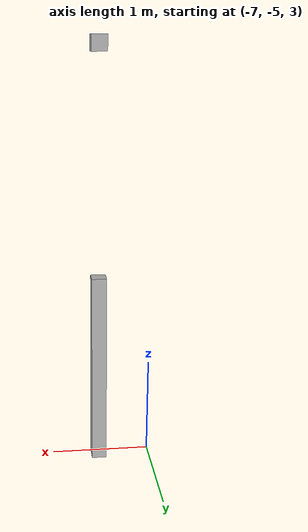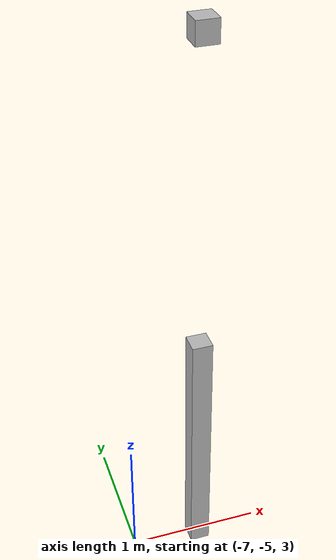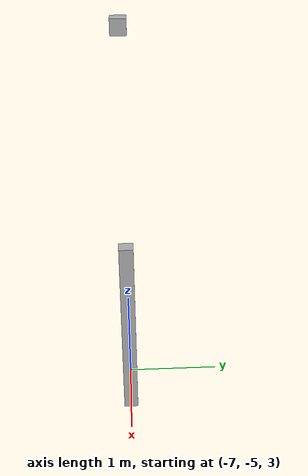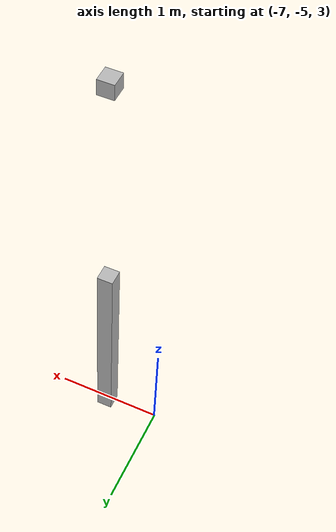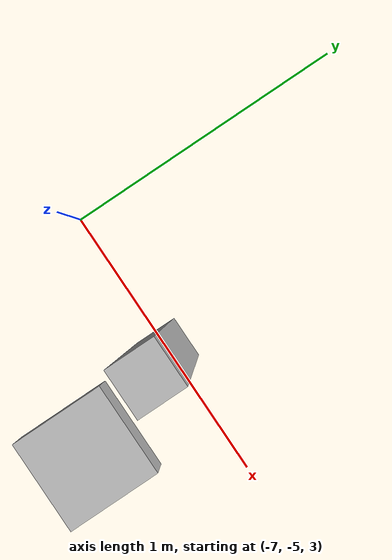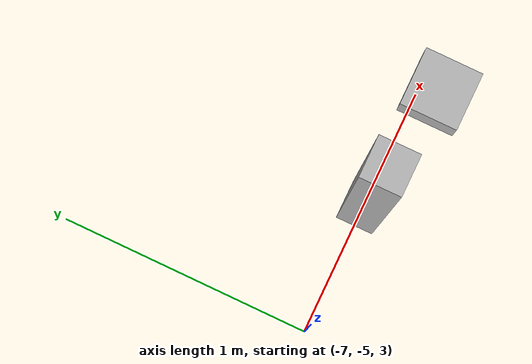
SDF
<sdf version="1.7">
 <world name="default">
  <model name="orthogonal_747_2.000.15_TS">
   <static>1</static>
   <link name="z_link_3_0_0">
    <inertial>
     <mass>1</mass>
     <inertia>
      <ixx>0.166667</ixx>
      <ixy>0</ixy>
      <ixz>0</ixz>
      <iyy>0.166667</iyy>
      <iyz>0</iyz>
      <izz>0.166667</izz>
     </inertia>
    </inertial>
    <pose>0 0 6.45 0 -0 0</pose>
    <visual name="visual_0">
     <laser_retro>2577</laser_retro>
     <geometry><box><size>0.15 1e-06 2</size></box></geometry>
     <material>
      <script><name>Gazebo/Grey</name><uri>file://media/materials/scripts/gazebo.material</uri></script>
      <shader type="pixel"><normal_map>__default__</normal_map></shader>
      <ambient>0.678 0.498 0.659 1</ambient>
      <diffuse>0.7 0.7 0.7 1</diffuse>
      <specular>0.01 0.01 0.01 1</specular>
      <emissive>0 0 0 1</emissive>
     </material>
     <pose>0 -0.075 0 0 -0 0</pose>
     <transparency>1</transparency>
    </visual>
    <visual name="visual_1">
     <laser_retro>2578</laser_retro>
     <geometry><box><size>0.15 1e-06 2</size></box></geometry>
     <material>
      <script><name>Gazebo/Grey</name><uri>file://media/materials/scripts/gazebo.material</uri></script>
      <shader type="pixel"><normal_map>__default__</normal_map></shader>
      <ambient>0.447 0.624 0.812 1</ambient>
      <diffuse>0.7 0.7 0.7 1</diffuse>
      <specular>0.01 0.01 0.01 1</specular>
      <emissive>0 0 0 1</emissive>
     </material>
     <pose>0 0.075 0 0 -0 0</pose>
     <transparency>1</transparency>
    </visual>
    <visual name="visual_2">
     <laser_retro>2579</laser_retro>
     <geometry><box><size>0.15 0.15 1e-06</size></box></geometry>
     <material>
      <script><name>Gazebo/Grey</name><uri>file://media/materials/scripts/gazebo.material</uri></script>
      <shader type="pixel"><normal_map>__default__</normal_map></shader>
      <ambient>0.988 0.686 0.243 1</ambient>
      <diffuse>0.7 0.7 0.7 1</diffuse>
      <specular>0.01 0.01 0.01 1</specular>
      <emissive>0 0 0 1</emissive>
     </material>
     <pose>0 0 -1 0 -0 0</pose>
     <transparency>1</transparency>
    </visual>
    <visual name="visual_3">
     <laser_retro>2580</laser_retro>
     <geometry><box><size>1e-06 0.15 2</size></box></geometry>
     <material>
      <script><name>Gazebo/Grey</name><uri>file://media/materials/scripts/gazebo.material</uri></script>
      <shader type="pixel"><normal_map>__default__</normal_map></shader>
      <ambient>0.988 0.914 0.31 1</ambient>
      <diffuse>0.7 0.7 0.7 1</diffuse>
      <specular>0.01 0.01 0.01 1</specular>
      <emissive>0 0 0 1</emissive>
     </material>
     <pose>0.075 0 0 0 -0 0</pose>
     <transparency>1</transparency>
    </visual>
    <visual name="visual_4">
     <laser_retro>2581</laser_retro>
     <geometry><box><size>0.15 0.15 1e-06</size></box></geometry>
     <material>
      <script><name>Gazebo/Grey</name><uri>file://media/materials/scripts/gazebo.material</uri></script>
      <shader type="pixel"><normal_map>__default__</normal_map></shader>
      <ambient>0.937 0.161 0.161 1</ambient>
      <diffuse>0.7 0.7 0.7 1</diffuse>
      <specular>0.01 0.01 0.01 1</specular>
      <emissive>0 0 0 1</emissive>
     </material>
     <pose>0 0 1 0 -0 0</pose>
     <transparency>1</transparency>
    </visual>
    <visual name="visual_5">
     <laser_retro>2582</laser_retro>
     <geometry><box><size>1e-06 0.15 2</size></box></geometry>
     <material>
      <script><name>Gazebo/Grey</name><uri>file://media/materials/scripts/gazebo.material</uri></script>
      <shader type="pixel"><normal_map>__default__</normal_map></shader>
      <ambient>0.541 0.886 0.204 1</ambient>
      <diffuse>0.7 0.7 0.7 1</diffuse>
      <specular>0.01 0.01 0.01 1</specular>
      <emissive>0 0 0 1</emissive>
     </material>
     <pose>-0.075 0 0 0 -0 0</pose>
     <transparency>1</transparency>
    </visual>
    <visual name="visual_texture">
     <geometry><box><size>0.149985 0.149985 1.9998</size></box></geometry>
     <material>
      <script>
       <uri>model://BASE_MODELS/simple_block_v2_textured/materials/scripts</uri>
       <uri>model://BASE_MODELS/simple_block_v2_textured/materials/textures</uri>
       <name>metal</name>
      </script>
     </material>
     <laser_retro>2583</laser_retro>
    </visual>
    <collision name="collision">
     <geometry><box><size>0.15 0.15 2</size></box></geometry>
     <surface>
      <friction>
       <ode><mu>1</mu><mu2>1</mu2><fdir1>0 0 0</fdir1><slip1>0</slip1><slip2>0</slip2></ode>
       <torsional>
        <coefficient>1</coefficient>
        <patch_radius>0</patch_radius>
        <surface_radius>0</surface_radius>
        <use_patch_radius>1</use_patch_radius>
        <ode><slip>0</slip></ode>
       </torsional>
      </friction>
      <bounce><restitution_coefficient>0</restitution_coefficient><threshold>1e+06</threshold></bounce>
      <contact>
       <collide_without_contact>0</collide_without_contact>
       <collide_without_contact_bitmask>1</collide_without_contact_bitmask>
       <collide_bitmask>1</collide_bitmask>
       <ode>
        <soft_cfm>0</soft_cfm>
        <soft_erp>0.2</soft_erp>
        <kp>1e+13</kp>
        <kd>1</kd>
        <max_vel>0.01</max_vel>
        <min_depth>0</min_depth>
       </ode>
       <bullet>
        <split_impulse>1</split_impulse>
        <split_impulse_penetration_threshold>-0.01</split_impulse_penetration_threshold>
        <soft_cfm>0</soft_cfm>
        <soft_erp>0.2</soft_erp>
        <kp>1e+13</kp>
        <kd>1</kd>
       </bullet>
      </contact>
     </surface>
    </collision>
   </link>
   <link name="u_link_4_0_0">
    <inertial>
     <mass>1</mass>
     <inertia>
      <ixx>0.166667</ixx>
      <ixy>0</ixy>
      <ixz>0</ixz>
      <iyy>0.166667</iyy>
      <iyz>0</iyz>
      <izz>0.166667</izz>
     </inertia>
    </inertial>
    <pose>0 0 9.675 0 -0 0</pose>
    <visual name="visual_0">
     <laser_retro>3473</laser_retro>
     <geometry><box><size>0.15 1e-06 0.15</size></box></geometry>
     <material>
      <script><name>Gazebo/Grey</name><uri>file://media/materials/scripts/gazebo.material</uri></script>
      <shader type="pixel"><normal_map>__default__</normal_map></shader>
      <ambient>0.678 0.498 0.659 1</ambient>
      <diffuse>0.7 0.7 0.7 1</diffuse>
      <specular>0.01 0.01 0.01 1</specular>
      <emissive>0 0 0 1</emissive>
     </material>
     <pose>0 -0.075 0 0 -0 0</pose>
     <transparency>1</transparency>
    </visual>
    <visual name="visual_1">
     <laser_retro>3474</laser_retro>
     <geometry><box><size>0.15 1e-06 0.15</size></box></geometry>
     <material>
      <script><name>Gazebo/Grey</name><uri>file://media/materials/scripts/gazebo.material</uri></script>
      <shader type="pixel"><normal_map>__default__</normal_map></shader>
      <ambient>0.447 0.624 0.812 1</ambient>
      <diffuse>0.7 0.7 0.7 1</diffuse>
      <specular>0.01 0.01 0.01 1</specular>
      <emissive>0 0 0 1</emissive>
     </material>
     <pose>0 0.075 0 0 -0 0</pose>
     <transparency>1</transparency>
    </visual>
    <visual name="visual_2">
     <laser_retro>3475</laser_retro>
     <geometry><box><size>0.15 0.15 1e-06</size></box></geometry>
     <material>
      <script><name>Gazebo/Grey</name><uri>file://media/materials/scripts/gazebo.material</uri></script>
      <shader type="pixel"><normal_map>__default__</normal_map></shader>
      <ambient>0.988 0.686 0.243 1</ambient>
      <diffuse>0.7 0.7 0.7 1</diffuse>
      <specular>0.01 0.01 0.01 1</specular>
      <emissive>0 0 0 1</emissive>
     </material>
     <pose>0 0 -0.075 0 -0 0</pose>
     <transparency>1</transparency>
    </visual>
    <visual name="visual_3">
     <laser_retro>3476</laser_retro>
     <geometry><box><size>1e-06 0.15 0.15</size></box></geometry>
     <material>
      <script><name>Gazebo/Grey</name><uri>file://media/materials/scripts/gazebo.material</uri></script>
      <shader type="pixel"><normal_map>__default__</normal_map></shader>
      <ambient>0.988 0.914 0.31 1</ambient>
      <diffuse>0.7 0.7 0.7 1</diffuse>
      <specular>0.01 0.01 0.01 1</specular>
      <emissive>0 0 0 1</emissive>
     </material>
     <pose>0.075 0 0 0 -0 0</pose>
     <transparency>1</transparency>
    </visual>
    <visual name="visual_4">
     <laser_retro>3477</laser_retro>
     <geometry><box><size>0.15 0.15 1e-06</size></box></geometry>
     <material>
      <script><name>Gazebo/Grey</name><uri>file://media/materials/scripts/gazebo.material</uri></script>
      <shader type="pixel"><normal_map>__default__</normal_map></shader>
      <ambient>0.937 0.161 0.161 1</ambient>
      <diffuse>0.7 0.7 0.7 1</diffuse>
      <specular>0.01 0.01 0.01 1</specular>
      <emissive>0 0 0 1</emissive>
     </material>
     <pose>0 0 0.075 0 -0 0</pose>
     <transparency>1</transparency>
    </visual>
    <visual name="visual_5">
     <laser_retro>3478</laser_retro>
     <geometry><box><size>1e-06 0.15 0.15</size></box></geometry>
     <material>
      <script><name>Gazebo/Grey</name><uri>file://media/materials/scripts/gazebo.material</uri></script>
      <shader type="pixel"><normal_map>__default__</normal_map></shader>
      <ambient>0.541 0.886 0.204 1</ambient>
      <diffuse>0.7 0.7 0.7 1</diffuse>
      <specular>0.01 0.01 0.01 1</specular>
      <emissive>0 0 0 1</emissive>
     </material>
     <pose>-0.075 0 0 0 -0 0</pose>
     <transparency>1</transparency>
    </visual>
    <visual name="visual_texture">
     <geometry><box><size>0.149985 0.149985 0.149985</size></box></geometry>
     <material>
      <script>
       <uri>model://BASE_MODELS/simple_block_v2_textured/materials/scripts</uri>
       <uri>model://BASE_MODELS/simple_block_v2_textured/materials/textures</uri>
       <name>metal</name>
      </script>
     </material>
     <laser_retro>3479</laser_retro>
    </visual>
    <collision name="collision">
     <geometry><box><size>0.15 0.15 0.15</size></box></geometry>
     <surface>
      <friction>
       <ode><mu>1</mu><mu2>1</mu2><fdir1>0 0 0</fdir1><slip1>0</slip1><slip2>0</slip2></ode>
       <torsional>
        <coefficient>1</coefficient>
        <patch_radius>0</patch_radius>
        <surface_radius>0</surface_radius>
        <use_patch_radius>1</use_patch_radius>
        <ode><slip>0</slip></ode>
       </torsional>
      </friction>
      <bounce><restitution_coefficient>0</restitution_coefficient><threshold>1e+06</threshold></bounce>
      <contact>
       <collide_without_contact>0</collide_without_contact>
       <collide_without_contact_bitmask>1</collide_without_contact_bitmask>
       <collide_bitmask>1</collide_bitmask>
       <ode>
        <soft_cfm>0</soft_cfm>
        <soft_erp>0.2</soft_erp>
        <kp>1e+13</kp>
        <kd>1</kd>
        <max_vel>0.01</max_vel>
        <min_depth>0</min_depth>
       </ode>
       <bullet>
        <split_impulse>1</split_impulse>
        <split_impulse_penetration_threshold>-0.01</split_impulse_penetration_threshold>
        <soft_cfm>0</soft_cfm>
        <soft_erp>0.2</soft_erp>
        <kp>1e+13</kp>
        <kd>1</kd>
       </bullet>
      </contact>
     </surface>
    </collision>
   </link>
   <pose>-6.47624 -5 -2.5 0 -0 0</pose>
  </model>
 </world>
</sdf>
